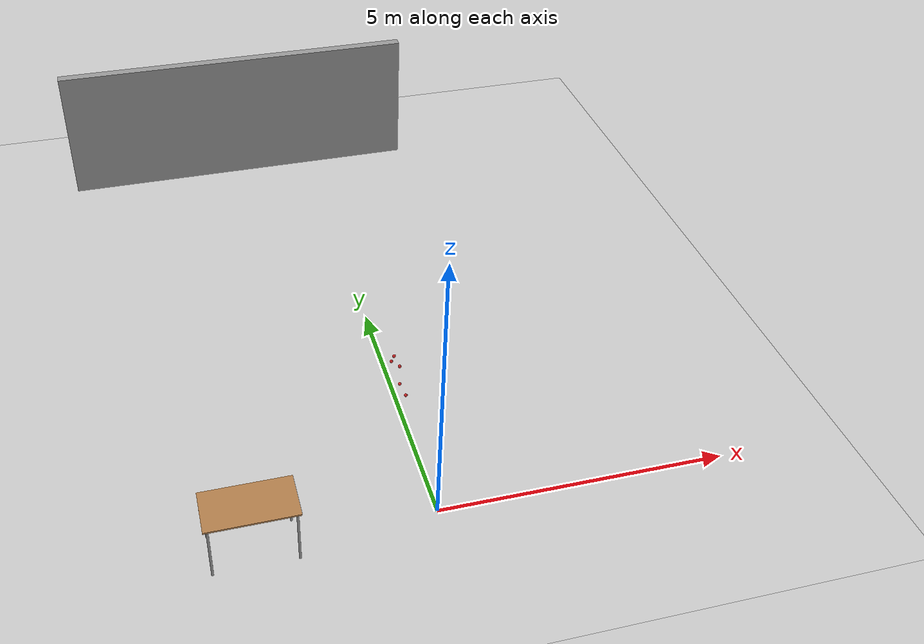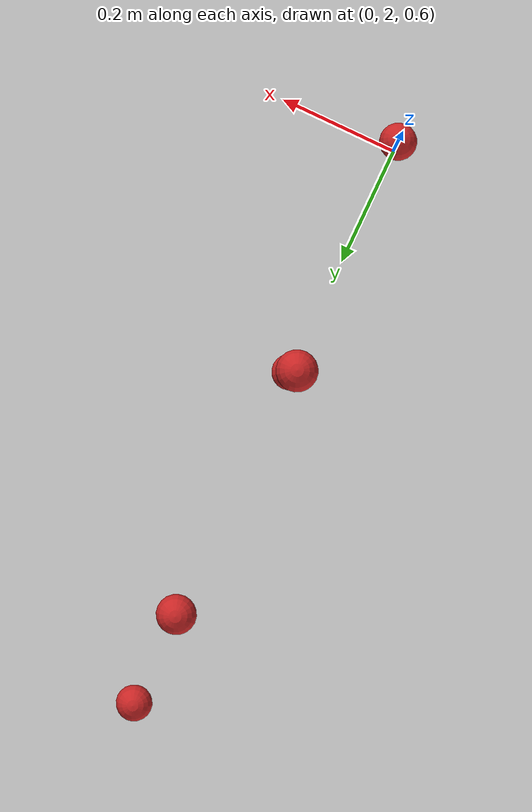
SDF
<sdf version="1.6">
 <world name="default">
  <light name="sun" type="directional">
   <pose>0 0 10 0 -0 0</pose>
   <diffuse>0.8 0.8 0.8 1</diffuse>
   <specular>0.2 0.2 0.2 1</specular>
   <attenuation>
    <range>1000</range>
    <constant>0.9</constant>
    <linear>0.01</linear>
    <quadratic>0.001</quadratic>
   </attenuation>
   <direction>-0.5 0.1 -0.9</direction>
  </light>
  <model name="ground_plane">
   <pose>0 2 0 0 -0 0</pose>
   <static>1</static>
   <link name="link">
    <collision name="collision">
     <geometry><plane><normal>0 0 1</normal><size>100 100</size></plane></geometry>
     <surface><friction><ode><mu>100</mu><mu2>50</mu2></ode></friction></surface>
    </collision>
    <visual name="visual">
     <cast_shadows>0</cast_shadows>
     <geometry><plane><normal>0 0 1</normal><size>100 100</size></plane></geometry>
     <material>
      <script><uri>file://media/materials/scripts/gazebo.material</uri><name>Gazebo/Grey</name></script>
     </material>
    </visual>
    <velocity_decay><linear>0</linear><angular>0</angular></velocity_decay>
   </link>
  </model>
  <physics name="default_physics" default="0" type="ode">
   <max_step_size>0.001</max_step_size>
   <real_time_factor>1</real_time_factor>
   <real_time_update_rate>1000</real_time_update_rate>
  </physics>
  <scene><ambient>0.4 0.4 0.4 1</ambient><background>0.7 0.7 0.7 1</background><shadows>1</shadows></scene>
  <spherical_coordinates>
   <surface_model>EARTH_WGS84</surface_model>
   <latitude_deg>0</latitude_deg>
   <longitude_deg>0</longitude_deg>
   <elevation>0</elevation>
   <heading_deg>0</heading_deg>
  </spherical_coordinates>
  <model name="table">
   <static>1</static>
   <link name="link">
    <collision name="surface">
     <pose>0 0 1 0 -0 0</pose>
     <geometry><box><size>1.5 0.8 0.03</size></box></geometry>
     <surface><friction><ode><mu>0.6</mu><mu2>0.6</mu2></ode></friction></surface>
    </collision>
    <visual name="visual1">
     <pose>0 0 1 0 -0 0</pose>
     <geometry><box><size>1.5 0.8 0.03</size></box></geometry>
     <material>
      <script><uri>file://media/materials/scripts/gazebo.material</uri><name>Gazebo/Wood</name></script>
     </material>
    </visual>
    <collision name="front_left_leg">
     <pose>0.68 0.38 0.5 0 -0 0</pose>
     <geometry><cylinder><radius>0.02</radius><length>1</length></cylinder></geometry>
    </collision>
    <visual name="front_left_leg">
     <pose>0.68 0.38 0.5 0 -0 0</pose>
     <geometry><cylinder><radius>0.02</radius><length>1</length></cylinder></geometry>
     <material>
      <script><uri>file://media/materials/scripts/gazebo.material</uri><name>Gazebo/Grey</name></script>
     </material>
    </visual>
    <collision name="front_right_leg">
     <pose>0.68 -0.38 0.5 0 -0 0</pose>
     <geometry><cylinder><radius>0.02</radius><length>1</length></cylinder></geometry>
    </collision>
    <visual name="front_right_leg">
     <pose>0.68 -0.38 0.5 0 -0 0</pose>
     <geometry><cylinder><radius>0.02</radius><length>1</length></cylinder></geometry>
     <material>
      <script><uri>file://media/materials/scripts/gazebo.material</uri><name>Gazebo/Grey</name></script>
     </material>
    </visual>
    <collision name="back_right_leg">
     <pose>-0.68 -0.38 0.5 0 -0 0</pose>
     <geometry><cylinder><radius>0.02</radius><length>1</length></cylinder></geometry>
    </collision>
    <visual name="back_right_leg">
     <pose>-0.68 -0.38 0.5 0 -0 0</pose>
     <geometry><cylinder><radius>0.02</radius><length>1</length></cylinder></geometry>
     <material>
      <script><uri>file://media/materials/scripts/gazebo.material</uri><name>Gazebo/Grey</name></script>
     </material>
    </visual>
    <collision name="back_left_leg">
     <pose>-0.68 0.38 0.5 0 -0 0</pose>
     <geometry><cylinder><radius>0.02</radius><length>1</length></cylinder></geometry>
    </collision>
    <visual name="back_left_leg">
     <pose>-0.68 0.38 0.5 0 -0 0</pose>
     <geometry><cylinder><radius>0.02</radius><length>1</length></cylinder></geometry>
     <material>
      <script><uri>file://media/materials/scripts/gazebo.material</uri><name>Gazebo/Grey</name></script>
     </material>
    </visual>
    <velocity_decay><linear>0</linear><angular>0</angular></velocity_decay>
   </link>
   <pose>-3 0 0 0 -0 0</pose>
  </model>
  <model name="grey_wall">
   <static>1</static>
   <link name="link">
    <pose>0 0 1.4 0 -0 0</pose>
    <collision name="collision"><geometry><box><size>7.5 0.2 2.8</size></box></geometry></collision>
    <visual name="visual">
     <cast_shadows>0</cast_shadows>
     <geometry><box><size>7.5 0.2 2.8</size></box></geometry>
     <material>
      <script>
       <uri>model://grey_wall/materials/scripts</uri>
       <uri>model://grey_wall/materials/textures</uri>
       <name>vrc/grey_wall</name>
      </script>
     </material>
    </visual>
    <velocity_decay><linear>0</linear><angular>0</angular></velocity_decay>
   </link>
   <pose>-1.54682 11 0 0 -0 0</pose>
  </model>
  <gravity>0 0 -9.8</gravity>
  <magnetic_field>6e-06 2.3e-05 -4.2e-05</magnetic_field>
  <atmosphere type="adiabatic"/>
  <audio><device>default</device></audio>
  <model name="float_apple">
   <link name="link">
    <inertial>
     <mass>0.5</mass>
     <inertia><ixx>0.1</ixx><ixy>0</ixy><ixz>0</ixz><iyy>0.1</iyy><iyz>0</iyz><izz>0.1</izz></inertia>
    </inertial>
    <visual name="visual">
     <geometry><sphere><radius>0.03</radius></sphere></geometry>
     <material>
      <script><name>Gazebo/Red</name><uri>file://media/materials/scripts/gazebo.material</uri></script>
     </material>
    </visual>
    <collision name="collision">
     <geometry><sphere><radius>0.03</radius></sphere></geometry>
     <surface>
      <friction>
       <ode><mu>30</mu><mu2>30</mu2><fdir1>0 0 0</fdir1><slip1>0</slip1><slip2>0</slip2></ode>
       <torsional>
        <coefficient>1</coefficient>
        <patch_radius>0</patch_radius>
        <surface_radius>0</surface_radius>
        <use_patch_radius>1</use_patch_radius>
        <ode><slip>0</slip></ode>
       </torsional>
      </friction>
      <bounce><restitution_coefficient>0</restitution_coefficient><threshold>1e+06</threshold></bounce>
      <contact>
       <collide_without_contact>0</collide_without_contact>
       <collide_without_contact_bitmask>1</collide_without_contact_bitmask>
       <collide_bitmask>1</collide_bitmask>
       <ode>
        <soft_cfm>0</soft_cfm>
        <soft_erp>0.2</soft_erp>
        <kp>1e+13</kp>
        <kd>1</kd>
        <max_vel>0</max_vel>
        <min_depth>0.002</min_depth>
       </ode>
       <bullet>
        <split_impulse>1</split_impulse>
        <split_impulse_penetration_threshold>-0.01</split_impulse_penetration_threshold>
        <soft_cfm>0</soft_cfm>
        <soft_erp>0.2</soft_erp>
        <kp>1e+13</kp>
        <kd>1</kd>
       </bullet>
      </contact>
     </surface>
    </collision>
    <gravity>0</gravity>
   </link>
   <static>0</static>
   <pose>0 2 0.7 0 -0 0</pose>
  </model>
  <model name="float_apple_0">
   <link name="link">
    <inertial>
     <mass>0.5</mass>
     <inertia><ixx>0.1</ixx><ixy>0</ixy><ixz>0</ixz><iyy>0.1</iyy><iyz>0</iyz><izz>0.1</izz></inertia>
    </inertial>
    <visual name="visual">
     <geometry><sphere><radius>0.03</radius></sphere></geometry>
     <material>
      <script><name>Gazebo/Red</name><uri>file://media/materials/scripts/gazebo.material</uri></script>
     </material>
    </visual>
    <collision name="collision">
     <geometry><sphere><radius>0.03</radius></sphere></geometry>
     <surface>
      <friction>
       <ode><mu>30</mu><mu2>30</mu2><fdir1>0 0 0</fdir1><slip1>0</slip1><slip2>0</slip2></ode>
       <torsional>
        <coefficient>1</coefficient>
        <patch_radius>0</patch_radius>
        <surface_radius>0</surface_radius>
        <use_patch_radius>1</use_patch_radius>
        <ode><slip>0</slip></ode>
       </torsional>
      </friction>
      <bounce><restitution_coefficient>0</restitution_coefficient><threshold>1e+06</threshold></bounce>
      <contact>
       <collide_without_contact>0</collide_without_contact>
       <collide_without_contact_bitmask>1</collide_without_contact_bitmask>
       <collide_bitmask>1</collide_bitmask>
       <ode>
        <soft_cfm>0</soft_cfm>
        <soft_erp>0.2</soft_erp>
        <kp>1e+13</kp>
        <kd>1</kd>
        <max_vel>0</max_vel>
        <min_depth>0.002</min_depth>
       </ode>
       <bullet>
        <split_impulse>1</split_impulse>
        <split_impulse_penetration_threshold>-0.01</split_impulse_penetration_threshold>
        <soft_cfm>0</soft_cfm>
        <soft_erp>0.2</soft_erp>
        <kp>1e+13</kp>
        <kd>1</kd>
       </bullet>
      </contact>
     </surface>
    </collision>
    <gravity>0</gravity>
   </link>
   <static>0</static>
   <pose>0 2.4 0.6 0 -0 0</pose>
  </model>
  <model name="float_apple_1">
   <link name="link">
    <inertial>
     <mass>0.5</mass>
     <inertia><ixx>0.1</ixx><ixy>0</ixy><ixz>0</ixz><iyy>0.1</iyy><iyz>0</iyz><izz>0.1</izz></inertia>
    </inertial>
    <visual name="visual">
     <geometry><sphere><radius>0.03</radius></sphere></geometry>
     <material>
      <script><name>Gazebo/Red</name><uri>file://media/materials/scripts/gazebo.material</uri></script>
     </material>
    </visual>
    <collision name="collision">
     <geometry><sphere><radius>0.03</radius></sphere></geometry>
     <surface>
      <friction>
       <ode><mu>30</mu><mu2>30</mu2><fdir1>0 0 0</fdir1><slip1>0</slip1><slip2>0</slip2></ode>
       <torsional>
        <coefficient>1</coefficient>
        <patch_radius>0</patch_radius>
        <surface_radius>0</surface_radius>
        <use_patch_radius>1</use_patch_radius>
        <ode><slip>0</slip></ode>
       </torsional>
      </friction>
      <bounce><restitution_coefficient>0</restitution_coefficient><threshold>1e+06</threshold></bounce>
      <contact>
       <collide_without_contact>0</collide_without_contact>
       <collide_without_contact_bitmask>1</collide_without_contact_bitmask>
       <collide_bitmask>1</collide_bitmask>
       <ode>
        <soft_cfm>0</soft_cfm>
        <soft_erp>0.2</soft_erp>
        <kp>1e+13</kp>
        <kd>1</kd>
        <max_vel>0</max_vel>
        <min_depth>0.002</min_depth>
       </ode>
       <bullet>
        <split_impulse>1</split_impulse>
        <split_impulse_penetration_threshold>-0.01</split_impulse_penetration_threshold>
        <soft_cfm>0</soft_cfm>
        <soft_erp>0.2</soft_erp>
        <kp>1e+13</kp>
        <kd>1</kd>
       </bullet>
      </contact>
     </surface>
    </collision>
    <gravity>0</gravity>
   </link>
   <static>0</static>
   <pose>-0.007531 2.40571 1.01081 0 -0 0</pose>
  </model>
  <model name="float_apple_2">
   <link name="link">
    <inertial>
     <mass>0.5</mass>
     <inertia><ixx>0.1</ixx><ixy>0</ixy><ixz>0</ixz><iyy>0.1</iyy><iyz>0</iyz><izz>0.1</izz></inertia>
    </inertial>
    <visual name="visual">
     <geometry><sphere><radius>0.03</radius></sphere></geometry>
     <material>
      <script><name>Gazebo/Red</name><uri>file://media/materials/scripts/gazebo.material</uri></script>
     </material>
    </visual>
    <collision name="collision">
     <geometry><sphere><radius>0.03</radius></sphere></geometry>
     <surface>
      <friction>
       <ode><mu>30</mu><mu2>30</mu2><fdir1>0 0 0</fdir1><slip1>0</slip1><slip2>0</slip2></ode>
       <torsional>
        <coefficient>1</coefficient>
        <patch_radius>0</patch_radius>
        <surface_radius>0</surface_radius>
        <use_patch_radius>1</use_patch_radius>
        <ode><slip>0</slip></ode>
       </torsional>
      </friction>
      <bounce><restitution_coefficient>0</restitution_coefficient><threshold>1e+06</threshold></bounce>
      <contact>
       <collide_without_contact>0</collide_without_contact>
       <collide_without_contact_bitmask>1</collide_without_contact_bitmask>
       <collide_bitmask>1</collide_bitmask>
       <ode>
        <soft_cfm>0</soft_cfm>
        <soft_erp>0.2</soft_erp>
        <kp>1e+13</kp>
        <kd>1</kd>
        <max_vel>0</max_vel>
        <min_depth>0.002</min_depth>
       </ode>
       <bullet>
        <split_impulse>1</split_impulse>
        <split_impulse_penetration_threshold>-0.01</split_impulse_penetration_threshold>
        <soft_cfm>0</soft_cfm>
        <soft_erp>0.2</soft_erp>
        <kp>1e+13</kp>
        <kd>1</kd>
       </bullet>
      </contact>
     </surface>
    </collision>
    <gravity>0</gravity>
   </link>
   <static>0</static>
   <pose>0 2.8 0.9 0 -0 0</pose>
  </model>
  <model name="float_apple_3">
   <link name="link">
    <inertial>
     <mass>0.5</mass>
     <inertia><ixx>0.1</ixx><ixy>0</ixy><ixz>0</ixz><iyy>0.1</iyy><iyz>0</iyz><izz>0.1</izz></inertia>
    </inertial>
    <visual name="visual">
     <geometry><sphere><radius>0.03</radius></sphere></geometry>
     <material>
      <script><name>Gazebo/Red</name><uri>file://media/materials/scripts/gazebo.material</uri></script>
     </material>
    </visual>
    <collision name="collision">
     <geometry><sphere><radius>0.03</radius></sphere></geometry>
     <surface>
      <friction>
       <ode><mu>30</mu><mu2>30</mu2><fdir1>0 0 0</fdir1><slip1>0</slip1><slip2>0</slip2></ode>
       <torsional>
        <coefficient>1</coefficient>
        <patch_radius>0</patch_radius>
        <surface_radius>0</surface_radius>
        <use_patch_radius>1</use_patch_radius>
        <ode><slip>0</slip></ode>
       </torsional>
      </friction>
      <bounce><restitution_coefficient>0</restitution_coefficient><threshold>1e+06</threshold></bounce>
      <contact>
       <collide_without_contact>0</collide_without_contact>
       <collide_without_contact_bitmask>1</collide_without_contact_bitmask>
       <collide_bitmask>1</collide_bitmask>
       <ode>
        <soft_cfm>0</soft_cfm>
        <soft_erp>0.2</soft_erp>
        <kp>1e+13</kp>
        <kd>1</kd>
        <max_vel>0</max_vel>
        <min_depth>0.002</min_depth>
       </ode>
       <bullet>
        <split_impulse>1</split_impulse>
        <split_impulse_penetration_threshold>-0.01</split_impulse_penetration_threshold>
        <soft_cfm>0</soft_cfm>
        <soft_erp>0.2</soft_erp>
        <kp>1e+13</kp>
        <kd>1</kd>
       </bullet>
      </contact>
     </surface>
    </collision>
    <gravity>0</gravity>
   </link>
   <static>0</static>
   <pose>0 3 0.6 0 -0 0</pose>
  </model>
 </world>
</sdf>
